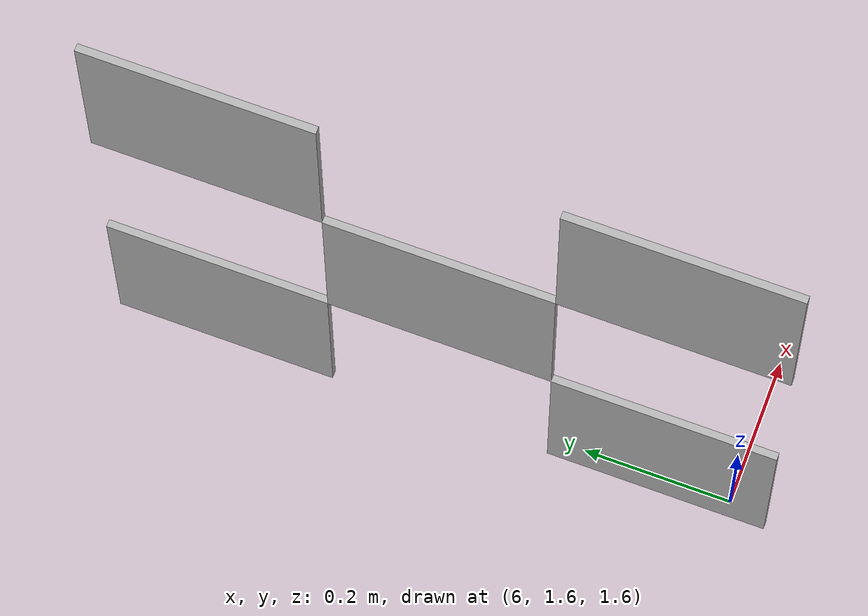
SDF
<?xml version="1.0" ?>
<sdf version="1.4">

	<model name='tag_bundle4'>

		<static>True</static>

		<link name="tag_15">

			<pose>6 2 2 -1.5713 0 0</pose>

			<inertial>
	        	<mass>0.1</mass>

	        	<inertia>
					<ixx>0.0166667</ixx>
					<ixy>0</ixy>
					<ixz>0</ixz>
					<iyy>0.0166667</iyy>
					<iyz>0</iyz>
					<izz>0.0166667</izz>
        		</inertia>

        		<pose frame=''>0 0 0 0 -0 0</pose>
      		</inertial>

			<pose frame=''>0 0 0 0 -0 0</pose>
			<gravity>1</gravity>
			<self_collide>0</self_collide>
			<kinematic>0</kinematic>
			<enable_wind>0</enable_wind>

			<visual name='visual_15'>
				<pose frame=''>0 0 0 0 -0 0</pose>

		        <geometry>
		        	<box>
		        	<size>0.01 0.3 0.3</size>
		        	</box>
		        </geometry>

		        <material>
		        	<lighting>0</lighting>

		        	<script>
		        		<uri>models://media/materials/scripts/Apriltag.material</uri>
		        		<name>Apriltag/id15</name>
		          	</script>

		        	<shader type='vertex'>
		        		<normal_map>__default__</normal_map>
		          	</shader>

		        	<ambient>0.3 0.3 0.3 1</ambient>
		        	<diffuse>0.7 0.7 0.7 1</diffuse>
		        	<specular>0.01 0.01 0.01 1</specular>
		        	<emissive>0 0 0 1</emissive>
		        </material>

		        <transparency>0</transparency>
		        <cast_shadows>1</cast_shadows>
			</visual>

			<collision name='collision_15'>
				<laser_retro>0</laser_retro>
        		<max_contacts>10</max_contacts>
        		<pose frame=''>0 0 0 0 -0 0</pose>

		        <geometry>
		        	<box>
		        		<size>0.01 0.3 0.3</size>
		        	</box>
		        </geometry>

		        <surface>
		        	<friction>
		            	<ode>
		            		<mu>1</mu>
		            		<mu2>1</mu2>
		            		<fdir1>0 0 0</fdir1>
		            		<slip1>0</slip1>
		            		<slip2>0</slip2>
		            	</ode>

		           		<torsional>
		            		<coefficient>1</coefficient>
	            			<patch_radius>0</patch_radius>
	            			<surface_radius>0</surface_radius>
	            			<use_patch_radius>1</use_patch_radius>

	            			<ode>
		                		<slip>0</slip>
		              		</ode>
		            	</torsional>
		          	</friction>

		        	<bounce>
		            	<restitution_coefficient>0</restitution_coefficient>
		            	<threshold>1e+06</threshold>
		        	</bounce>

		        	<contact>
		            	<collide_without_contact>0</collide_without_contact>
		            	<collide_without_contact_bitmask>1</collide_without_contact_bitmask>
		            	<collide_bitmask>1</collide_bitmask>

		            	<ode>
		            		<soft_cfm>0</soft_cfm>
		            		<soft_erp>0.2</soft_erp>
		            		<kp>1e+13</kp>
		            		<kd>1</kd>
		            		<max_vel>0.01</max_vel>
		            		<min_depth>0</min_depth>
		            	</ode>

			            <bullet>
			            	<split_impulse>1</split_impulse>
			            	<split_impulse_penetration_threshold>-0.01</split_impulse_penetration_threshold>
			            	<soft_cfm>0</soft_cfm>
			            	<soft_erp>0.2</soft_erp>
			            	<kp>1e+13</kp>
			            	<kd>1</kd>
			            </bullet>
		        	</contact>
		        </surface>
		    </collision>
		</link>
 -->
		<link name="tag_16">

			<pose>6 1.7 2.3 -1.5713 0 0</pose>

			<inertial>
	        	<mass>0.1</mass>

	        	<inertia>
					<ixx>0.0166667</ixx>
					<ixy>0</ixy>
					<ixz>0</ixz>
					<iyy>0.0166667</iyy>
					<iyz>0</iyz>
					<izz>0.0166667</izz>
        		</inertia>

        		<pose frame=''>0 0 0 0 -0 0</pose>
      		</inertial>

			<pose frame=''>0 0 0 0 -0 0</pose>
			<gravity>1</gravity>
			<self_collide>0</self_collide>
			<kinematic>0</kinematic>
			<enable_wind>0</enable_wind>

			<visual name='visual_16'>
				<pose frame=''>0 0 0 0 -0 0</pose>

		        <geometry>
		        	<box>
		        	<size>0.01 0.3 0.3</size>
		        	</box>
		        </geometry>

		        <material>
		        	<lighting>0</lighting>

		        	<script>
		        		<uri>models://media/materials/scripts/Apriltag.material</uri>
		        		<name>Apriltag/id16</name>
		          	</script>

		        	<shader type='vertex'>
		        		<normal_map>__default__</normal_map>
		          	</shader>

		        	<ambient>0.3 0.3 0.3 1</ambient>
		        	<diffuse>0.7 0.7 0.7 1</diffuse>
		        	<specular>0.01 0.01 0.01 1</specular>
		        	<emissive>0 0 0 1</emissive>
		        </material>

		        <transparency>0</transparency>
		        <cast_shadows>1</cast_shadows>
			</visual>

			<collision name='collision_16'>
				<laser_retro>0</laser_retro>
        		<max_contacts>10</max_contacts>
        		<pose frame=''>0 0 0 0 -0 0</pose>

		        <geometry>
		        	<box>
		        		<size>0.01 0.3 0.3</size>
		        	</box>
		        </geometry>

		        <surface>
		        	<friction>
		            	<ode>
		            		<mu>1</mu>
		            		<mu2>1</mu2>
		            		<fdir1>0 0 0</fdir1>
		            		<slip1>0</slip1>
		            		<slip2>0</slip2>
		            	</ode>

		           		<torsional>
		            		<coefficient>1</coefficient>
	            			<patch_radius>0</patch_radius>
	            			<surface_radius>0</surface_radius>
	            			<use_patch_radius>1</use_patch_radius>

	            			<ode>
		                		<slip>0</slip>
		              		</ode>
		            	</torsional>
		          	</friction>

		        	<bounce>
		            	<restitution_coefficient>0</restitution_coefficient>
		            	<threshold>1e+06</threshold>
		        	</bounce>

		        	<contact>
		            	<collide_without_contact>0</collide_without_contact>
		            	<collide_without_contact_bitmask>1</collide_without_contact_bitmask>
		            	<collide_bitmask>1</collide_bitmask>

		            	<ode>
		            		<soft_cfm>0</soft_cfm>
		            		<soft_erp>0.2</soft_erp>
		            		<kp>1e+13</kp>
		            		<kd>1</kd>
		            		<max_vel>0.01</max_vel>
		            		<min_depth>0</min_depth>
		            	</ode>

			            <bullet>
			            	<split_impulse>1</split_impulse>
			            	<split_impulse_penetration_threshold>-0.01</split_impulse_penetration_threshold>
			            	<soft_cfm>0</soft_cfm>
			            	<soft_erp>0.2</soft_erp>
			            	<kp>1e+13</kp>
			            	<kd>1</kd>
			            </bullet>
		        	</contact>
		        </surface>
		    </collision>
		</link>

		<link name="tag_17">

			<pose>6 2.3 2.3 -1.5713 0 0</pose>

			<inertial>
	        	<mass>0.1</mass>

	        	<inertia>
					<ixx>0.0166667</ixx>
					<ixy>0</ixy>
					<ixz>0</ixz>
					<iyy>0.0166667</iyy>
					<iyz>0</iyz>
					<izz>0.0166667</izz>
        		</inertia>

        		<pose frame=''>0 0 0 0 -0 0</pose>
      		</inertial>

			<pose frame=''>0 0 0 0 -0 0</pose>
			<gravity>1</gravity>
			<self_collide>0</self_collide>
			<kinematic>0</kinematic>
			<enable_wind>0</enable_wind>

			<visual name='visual_17'>
				<pose frame=''>0 0 0 0 -0 0</pose>

		        <geometry>
		        	<box>
		        	<size>0.01 0.3 0.3</size>
		        	</box>
		        </geometry>

		        <material>
		        	<lighting>0</lighting>

		        	<script>
		        		<uri>models://media/materials/scripts/Apriltag.material</uri>
		        		<name>Apriltag/id17</name>
		          	</script>

		        	<shader type='vertex'>
		        		<normal_map>__default__</normal_map>
		          	</shader>

		        	<ambient>0.3 0.3 0.3 1</ambient>
		        	<diffuse>0.7 0.7 0.7 1</diffuse>
		        	<specular>0.01 0.01 0.01 1</specular>
		        	<emissive>0 0 0 1</emissive>
		        </material>

		        <transparency>0</transparency>
		        <cast_shadows>1</cast_shadows>
			</visual>

			<collision name='collision_17'>
				<laser_retro>0</laser_retro>
        		<max_contacts>10</max_contacts>
        		<pose frame=''>0 0 0 0 -0 0</pose>

		        <geometry>
		        	<box>
		        		<size>0.01 0.3 0.3</size>
		        	</box>
		        </geometry>

		        <surface>
		        	<friction>
		            	<ode>
		            		<mu>1</mu>
		            		<mu2>1</mu2>
		            		<fdir1>0 0 0</fdir1>
		            		<slip1>0</slip1>
		            		<slip2>0</slip2>
		            	</ode>

		           		<torsional>
		            		<coefficient>1</coefficient>
	            			<patch_radius>0</patch_radius>
	            			<surface_radius>0</surface_radius>
	            			<use_patch_radius>1</use_patch_radius>

	            			<ode>
		                		<slip>0</slip>
		              		</ode>
		            	</torsional>
		          	</friction>

		        	<bounce>
		            	<restitution_coefficient>0</restitution_coefficient>
		            	<threshold>1e+06</threshold>
		        	</bounce>

		        	<contact>
		            	<collide_without_contact>0</collide_without_contact>
		            	<collide_without_contact_bitmask>1</collide_without_contact_bitmask>
		            	<collide_bitmask>1</collide_bitmask>

		            	<ode>
		            		<soft_cfm>0</soft_cfm>
		            		<soft_erp>0.2</soft_erp>
		            		<kp>1e+13</kp>
		            		<kd>1</kd>
		            		<max_vel>0.01</max_vel>
		            		<min_depth>0</min_depth>
		            	</ode>

			            <bullet>
			            	<split_impulse>1</split_impulse>
			            	<split_impulse_penetration_threshold>-0.01</split_impulse_penetration_threshold>
			            	<soft_cfm>0</soft_cfm>
			            	<soft_erp>0.2</soft_erp>
			            	<kp>1e+13</kp>
			            	<kd>1</kd>
			            </bullet>
		        	</contact>
		        </surface>
		    </collision>
		</link>

		<link name="tag_18">

			<pose>6 2.3 1.7 -1.5713 0 0</pose>

			<inertial>
	        	<mass>0.1</mass>

	        	<inertia>
					<ixx>0.0166667</ixx>
					<ixy>0</ixy>
					<ixz>0</ixz>
					<iyy>0.0166667</iyy>
					<iyz>0</iyz>
					<izz>0.0166667</izz>
        		</inertia>

        		<pose frame=''>0 0 0 0 -0 0</pose>
      		</inertial>

			<pose frame=''>0 0 0 0 -0 0</pose>
			<gravity>1</gravity>
			<self_collide>0</self_collide>
			<kinematic>0</kinematic>
			<enable_wind>0</enable_wind>

			<visual name='visual_18'>
				<pose frame=''>0 0 0 0 -0 0</pose>

		        <geometry>
		        	<box>
		        	<size>0.01 0.3 0.3</size>
		        	</box>
		        </geometry>

		        <material>
		        	<lighting>0</lighting>

		        	<script>
		        		<uri>models://media/materials/scripts/Apriltag.material</uri>
		        		<name>Apriltag/id18</name>
		          	</script>

		        	<shader type='vertex'>
		        		<normal_map>__default__</normal_map>
		          	</shader>

		        	<ambient>0.3 0.3 0.3 1</ambient>
		        	<diffuse>0.7 0.7 0.7 1</diffuse>
		        	<specular>0.01 0.01 0.01 1</specular>
		        	<emissive>0 0 0 1</emissive>
		        </material>

		        <transparency>0</transparency>
		        <cast_shadows>1</cast_shadows>
			</visual>

			<collision name='collision_18'>
				<laser_retro>0</laser_retro>
        		<max_contacts>10</max_contacts>
        		<pose frame=''>0 0 0 0 -0 0</pose>

		        <geometry>
		        	<box>
		        		<size>0.01 0.3 0.3</size>
		        	</box>
		        </geometry>

		        <surface>
		        	<friction>
		            	<ode>
		            		<mu>1</mu>
		            		<mu2>1</mu2>
		            		<fdir1>0 0 0</fdir1>
		            		<slip1>0</slip1>
		            		<slip2>0</slip2>
		            	</ode>

		           		<torsional>
		            		<coefficient>1</coefficient>
	            			<patch_radius>0</patch_radius>
	            			<surface_radius>0</surface_radius>
	            			<use_patch_radius>1</use_patch_radius>

	            			<ode>
		                		<slip>0</slip>
		              		</ode>
		            	</torsional>
		          	</friction>

		        	<bounce>
		            	<restitution_coefficient>0</restitution_coefficient>
		            	<threshold>1e+06</threshold>
		        	</bounce>

		        	<contact>
		            	<collide_without_contact>0</collide_without_contact>
		            	<collide_without_contact_bitmask>1</collide_without_contact_bitmask>
		            	<collide_bitmask>1</collide_bitmask>

		            	<ode>
		            		<soft_cfm>0</soft_cfm>
		            		<soft_erp>0.2</soft_erp>
		            		<kp>1e+13</kp>
		            		<kd>1</kd>
		            		<max_vel>0.01</max_vel>
		            		<min_depth>0</min_depth>
		            	</ode>

			            <bullet>
			            	<split_impulse>1</split_impulse>
			            	<split_impulse_penetration_threshold>-0.01</split_impulse_penetration_threshold>
			            	<soft_cfm>0</soft_cfm>
			            	<soft_erp>0.2</soft_erp>
			            	<kp>1e+13</kp>
			            	<kd>1</kd>
			            </bullet>
		        	</contact>
		        </surface>
		    </collision>
		</link>

		<link name="tag_19">

			<pose>6 1.7 1.7 -1.5713 0 0</pose>

			<inertial>
	        	<mass>0.1</mass>

	        	<inertia>
					<ixx>0.0166667</ixx>
					<ixy>0</ixy>
					<ixz>0</ixz>
					<iyy>0.0166667</iyy>
					<iyz>0</iyz>
					<izz>0.0166667</izz>
        		</inertia>

        		<pose frame=''>0 0 0 0 -0 0</pose>
      		</inertial>

			<pose frame=''>0 0 0 0 -0 0</pose>
			<gravity>1</gravity>
			<self_collide>0</self_collide>
			<kinematic>0</kinematic>
			<enable_wind>0</enable_wind>

			<visual name='visual_19'>
				<pose frame=''>0 0 0 0 -0 0</pose>

		        <geometry>
		        	<box>
		        	<size>0.01 0.3 0.3</size>
		        	</box>
		        </geometry>

		        <material>
		        	<lighting>0</lighting>

		        	<script>
		        		<uri>models://media/materials/scripts/Apriltag.material</uri>
		        		<name>Apriltag/id19</name>
		          	</script>

		        	<shader type='vertex'>
		        		<normal_map>__default__</normal_map>
		          	</shader>

		        	<ambient>0.3 0.3 0.3 1</ambient>
		        	<diffuse>0.7 0.7 0.7 1</diffuse>
		        	<specular>0.01 0.01 0.01 1</specular>
		        	<emissive>0 0 0 1</emissive>
		        </material>

		        <transparency>0</transparency>
		        <cast_shadows>1</cast_shadows>
			</visual>

			<collision name='collision_19'>
				<laser_retro>0</laser_retro>
        		<max_contacts>10</max_contacts>
        		<pose frame=''>0 0 0 0 -0 0</pose>

		        <geometry>
		        	<box>
		        		<size>0.01 0.3 0.3</size>
		        	</box>
		        </geometry>

		        <surface>
		        	<friction>
		            	<ode>
		            		<mu>1</mu>
		            		<mu2>1</mu2>
		            		<fdir1>0 0 0</fdir1>
		            		<slip1>0</slip1>
		            		<slip2>0</slip2>
		            	</ode>

		           		<torsional>
		            		<coefficient>1</coefficient>
	            			<patch_radius>0</patch_radius>
	            			<surface_radius>0</surface_radius>
	            			<use_patch_radius>1</use_patch_radius>

	            			<ode>
		                		<slip>0</slip>
		              		</ode>
		            	</torsional>
		          	</friction>

		        	<bounce>
		            	<restitution_coefficient>0</restitution_coefficient>
		            	<threshold>1e+06</threshold>
		        	</bounce>

		        	<contact>
		            	<collide_without_contact>0</collide_without_contact>
		            	<collide_without_contact_bitmask>1</collide_without_contact_bitmask>
		            	<collide_bitmask>1</collide_bitmask>

		            	<ode>
		            		<soft_cfm>0</soft_cfm>
		            		<soft_erp>0.2</soft_erp>
		            		<kp>1e+13</kp>
		            		<kd>1</kd>
		            		<max_vel>0.01</max_vel>
		            		<min_depth>0</min_depth>
		            	</ode>

			            <bullet>
			            	<split_impulse>1</split_impulse>
			            	<split_impulse_penetration_threshold>-0.01</split_impulse_penetration_threshold>
			            	<soft_cfm>0</soft_cfm>
			            	<soft_erp>0.2</soft_erp>
			            	<kp>1e+13</kp>
			            	<kd>1</kd>
			            </bullet>
		        	</contact>
		        </surface>
		    </collision>
		</link>

		<joint name = "joint_1" type="fixed">
			<axis xyz="0 0 0" />
			<parent link="tag_15" />
			<child link="tag_16" />
	    </joint>

	    <joint name = "joint_2" type="fixed">
			<axis xyz="0 0 0" />
			<parent link="tag_15" />
			<child link="tag_17" />
	    </joint>

	    <joint name = "joint_3" type="fixed">
			<axis xyz="0 0 0" />
			<parent link="tag_15" />
			<child link="tag_18" />
	    </joint>

	    <joint name = "joint_4" type="fixed">
			<axis xyz="0 0 0" />
			<parent link="tag_15" />
			<child link="tag_19" />
	    </joint>

	</model>
</sdf>
